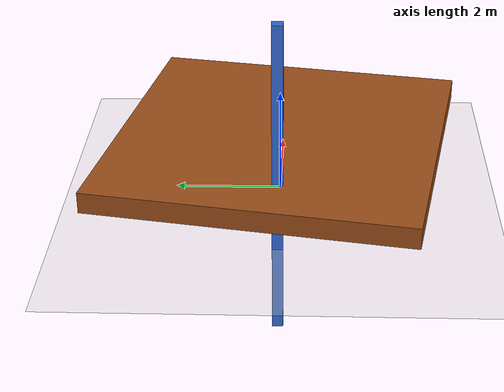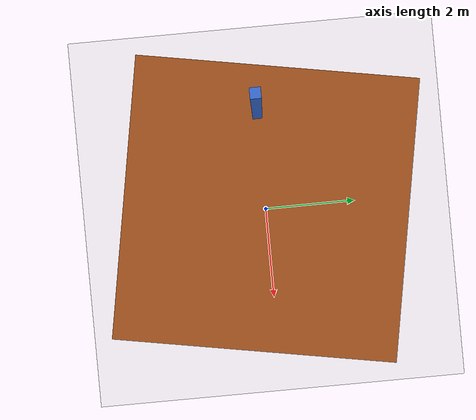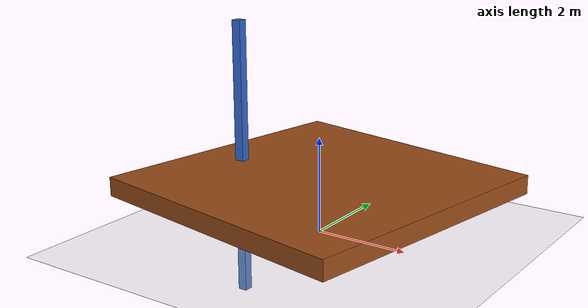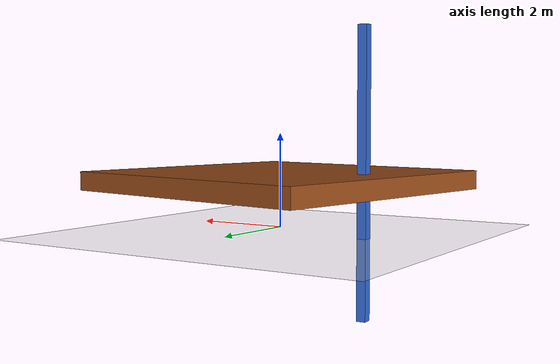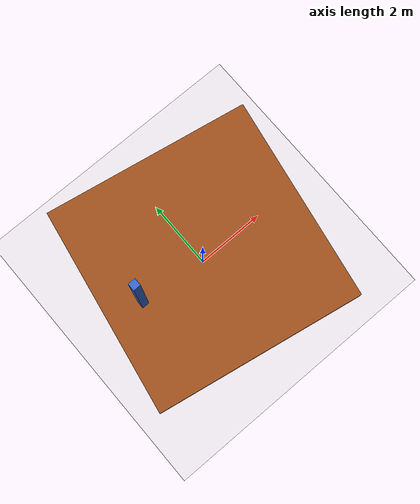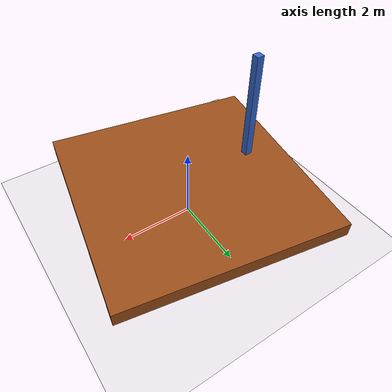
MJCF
<mujoco>
  <option gravity="0 0 -9.81"/>
  <worldbody>
    <body name="sloped_table" pos="0 0 1" quat="0.0872 0 0 0.9962">
      <geom type="box" size="3 3 0.2" rgba="0.6 0.3 0.1 1" friction="0.7 0.7 0.7"/>
    </body>
    <body name="ground" pos="0 0 -0.1">
      <geom type="plane" size="30 30 0.1" rgba="0.8 0.8 0.8 1"/>
    </body>
    <body name="chain" pos="-2 0 1.2">
      <geom type="box" size="0.1 0.1 3" density="1" rgba="0.2 0.4 0.8 1"/>
      <joint type="free"/>
    </body>
  </worldbody>
</mujoco>
